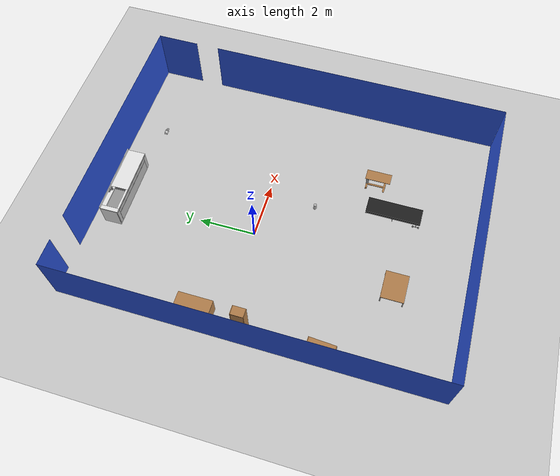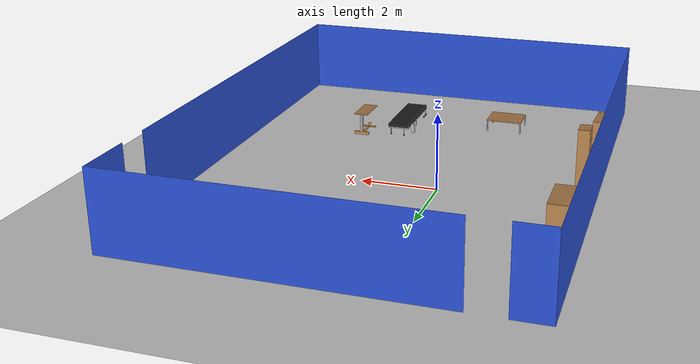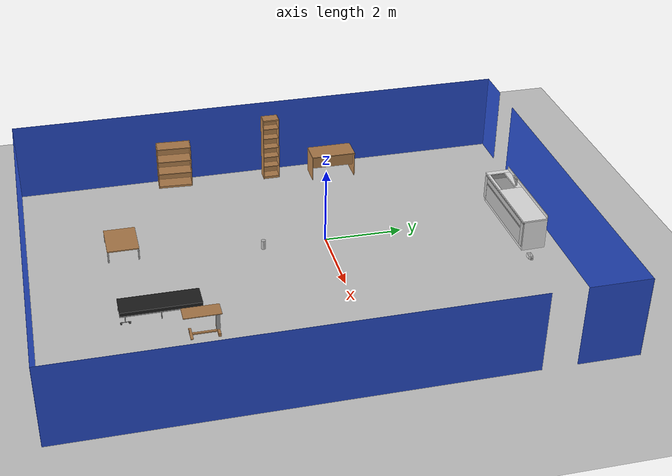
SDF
<sdf version="1.6">
 <world name="default">
  <physics name="default_physics" default="0" type="ode">
   <max_step_size>0.001</max_step_size>
   <real_time_factor>1</real_time_factor>
   <real_time_update_rate>1000</real_time_update_rate>
  </physics>
  <light name="sun" type="directional">
   <pose>0 0 10 0 -0 0</pose>
   <diffuse>0.8 0.8 0.8 1</diffuse>
   <specular>0.1 0.1 0.1 1</specular>
   <attenuation>
    <range>1000</range>
    <constant>0.9</constant>
    <linear>0.01</linear>
    <quadratic>0.001</quadratic>
   </attenuation>
   <direction>-0.5 0.5 -1</direction>
  </light>
  <model name="ground_plane">
   <static>1</static>
   <link name="link">
    <collision name="collision">
     <geometry><plane><normal>0 0 1</normal><size>100 100</size></plane></geometry>
     <surface><friction><ode><mu>100</mu><mu2>50</mu2></ode></friction></surface>
    </collision>
    <visual name="visual">
     <cast_shadows>0</cast_shadows>
     <geometry><plane><normal>0 0 1</normal><size>100 100</size></plane></geometry>
     <material>
      <script><uri>file://media/materials/scripts/gazebo.material</uri><name>Gazebo/Grey</name></script>
     </material>
    </visual>
   </link>
  </model>
  <gravity>0 0 -9.8</gravity>
  <magnetic_field>6e-06 2.3e-05 -4.2e-05</magnetic_field>
  <atmosphere type="adiabatic"/>
  <scene><ambient>0.4 0.4 0.4 1</ambient><background>0.7 0.7 0.7 1</background><shadows>1</shadows></scene>
  <spherical_coordinates>
   <surface_model>EARTH_WGS84</surface_model>
   <latitude_deg>0</latitude_deg>
   <longitude_deg>0</longitude_deg>
   <elevation>0</elevation>
   <heading_deg>0</heading_deg>
  </spherical_coordinates>
  <model name="bed">
   <link name="link">
    <inertial>
     <mass>10</mass>
     <inertia><ixx>1</ixx><ixy>0</ixy><ixz>0</ixz><iyy>1</iyy><iyz>0</iyz><izz>1</izz></inertia>
    </inertial>
    <visual name="cushion">
     <pose>-0.295 -0.975 0.2875 0 -0 0</pose>
     <geometry><box><size>0.59 1.95 0.095</size></box></geometry>
     <material>
      <script>
       <uri>model://base_materials/cloth/scripts</uri>
       <uri>model://base_materials/cloth/textures</uri>
       <name>cloth/black</name>
      </script>
     </material>
    </visual>
    <collision name="collision_cushion">
     <pose>-0.295 -0.975 0.2875 0 -0 0</pose>
     <geometry><box><size>0.59 1.95 0.095</size></box></geometry>
    </collision>
    <visual name="top_frame">
     <pose>-0.295 -0.975 0.225 0 -0 0</pose>
     <geometry><box><size>0.59 1.95 0.03</size></box></geometry>
     <material>
      <script><uri>model://base_materials/color/scripts</uri><name>hsr_color/grey</name></script>
     </material>
    </visual>
    <collision name="collision_top_frame">
     <pose>-0.295 -0.975 0.225 0 -0 0</pose>
     <geometry><box><size>0.59 1.95 0.03</size></box></geometry>
    </collision>
    <visual name="right_front_pole">
     <pose>-0.075 -0.0125 0.125 0 -0 0</pose>
     <geometry><cylinder><radius>0.0125</radius><length>0.17</length></cylinder></geometry>
     <material>
      <script><uri>model://base_materials/color/scripts</uri><name>hsr_color/grey</name></script>
     </material>
    </visual>
    <collision name="collision_right_front_pole">
     <pose>-0.075 -0.0125 0.125 0 -0 0</pose>
     <geometry><cylinder><radius>0.0125</radius><length>0.17</length></cylinder></geometry>
    </collision>
    <visual name="right_front_caster">
     <pose>-0.075 -0.0125 0.02 0 1.57 0</pose>
     <geometry><cylinder><radius>0.02</radius><length>0.04</length></cylinder></geometry>
     <material><script><name>Gazebo/Black</name><uri>__default__</uri></script></material>
    </visual>
    <collision name="collision_right_front_caster">
     <pose>-0.075 -0.0125 0.02 0 1.57 0</pose>
     <geometry><cylinder><radius>0.02</radius><length>0.04</length></cylinder></geometry>
    </collision>
    <visual name="right_back_pole">
     <pose>-0.46 -0.0125 0.125 0 -0 0</pose>
     <geometry><cylinder><radius>0.0125</radius><length>0.17</length></cylinder></geometry>
     <material>
      <script><uri>model://base_materials/color/scripts</uri><name>hsr_color/grey</name></script>
     </material>
    </visual>
    <collision name="collision_right_back_pole">
     <pose>-0.46 -0.0125 0.125 0 -0 0</pose>
     <geometry><cylinder><radius>0.0125</radius><length>0.17</length></cylinder></geometry>
    </collision>
    <visual name="right_back_caster">
     <pose>-0.46 -0.0125 0.02 0 1.57 0</pose>
     <geometry><cylinder><radius>0.02</radius><length>0.04</length></cylinder></geometry>
     <material><script><name>Gazebo/Black</name><uri>__default__</uri></script></material>
    </visual>
    <collision name="collision_back_front_caster">
     <pose>-0.46 -0.0125 0.02 0 1.57 0</pose>
     <geometry><cylinder><radius>0.02</radius><length>0.04</length></cylinder></geometry>
    </collision>
    <visual name="center_front_pole">
     <pose>-0.0425 -0.975 0.105 0 -0 0</pose>
     <geometry><cylinder><radius>0.0125</radius><length>0.21</length></cylinder></geometry>
     <material>
      <script><uri>model://base_materials/color/scripts</uri><name>hsr_color/grey</name></script>
     </material>
    </visual>
    <collision name="collision_center_front_pole">
     <pose>-0.0425 -0.975 0.105 0 -0 0</pose>
     <geometry><cylinder><radius>0.0125</radius><length>0.17</length></cylinder></geometry>
    </collision>
    <visual name="center_back_pole">
     <pose>-0.5475 -0.975 0.105 0 -0 0</pose>
     <geometry><cylinder><radius>0.0125</radius><length>0.21</length></cylinder></geometry>
     <material>
      <script><uri>model://base_materials/color/scripts</uri><name>hsr_color/grey</name></script>
     </material>
    </visual>
    <collision name="collision_center_back_pole">
     <pose>-0.5475 -0.975 0.105 0 -0 0</pose>
     <geometry><cylinder><radius>0.0125</radius><length>0.17</length></cylinder></geometry>
    </collision>
    <visual name="left_front_horizon_pole">
     <pose>-0.01 -1.825 0.06 1.57 -0 0</pose>
     <geometry><cylinder><radius>0.01</radius><length>0.25</length></cylinder></geometry>
     <material>
      <script><uri>model://base_materials/color/scripts</uri><name>hsr_color/grey</name></script>
     </material>
    </visual>
    <collision name="collision_left_front_horizon_pole">
     <pose>-0.01 -1.825 0.06 1.57 -0 0</pose>
     <geometry><cylinder><radius>0.01</radius><length>0.25</length></cylinder></geometry>
    </collision>
    <visual name="left_front_vertical_pole">
     <pose>-0.01 -1.825 0.14 0 -0 0</pose>
     <geometry><cylinder><radius>0.01</radius><length>0.14</length></cylinder></geometry>
     <material>
      <script><uri>model://base_materials/color/scripts</uri><name>hsr_color/grey</name></script>
     </material>
    </visual>
    <collision name="collision_left_front_vertical_pole">
     <pose>-0.01 -1.825 0.14 0 -0 0</pose>
     <geometry><cylinder><radius>0.01</radius><length>0.14</length></cylinder></geometry>
    </collision>
    <visual name="left_front_caster_r">
     <pose>-0.02 -1.725 0.025 0 1.57 0</pose>
     <geometry><cylinder><radius>0.025</radius><length>0.04</length></cylinder></geometry>
     <material><script><name>Gazebo/Black</name><uri>__default__</uri></script></material>
    </visual>
    <collision name="collision_left_front_caster_r">
     <pose>-0.02 -1.725 0.025 0 1.57 0</pose>
     <geometry><cylinder><radius>0.025</radius><length>0.04</length></cylinder></geometry>
    </collision>
    <visual name="left_front_caster_l">
     <pose>-0.02 -1.925 0.025 0 1.57 0</pose>
     <geometry><cylinder><radius>0.025</radius><length>0.04</length></cylinder></geometry>
     <material><script><name>Gazebo/Black</name><uri>__default__</uri></script></material>
    </visual>
    <collision name="collision_left_front_caster_l">
     <pose>-0.02 -1.925 0.025 0 1.57 0</pose>
     <geometry><cylinder><radius>0.025</radius><length>0.04</length></cylinder></geometry>
    </collision>
    <visual name="left_back_horizon_pole">
     <pose>-0.58 -1.825 0.06 1.57 -0 0</pose>
     <geometry><cylinder><radius>0.01</radius><length>0.25</length></cylinder></geometry>
     <material>
      <script><uri>model://base_materials/color/scripts</uri><name>hsr_color/grey</name></script>
     </material>
    </visual>
    <collision name="collision_left_back_horizon_pole">
     <pose>-0.58 -1.825 0.06 1.57 -0 0</pose>
     <geometry><cylinder><radius>0.01</radius><length>0.25</length></cylinder></geometry>
    </collision>
    <visual name="left_back_vertical_pole">
     <pose>-0.58 -1.825 0.14 0 -0 0</pose>
     <geometry><cylinder><radius>0.01</radius><length>0.14</length></cylinder></geometry>
     <material>
      <script><uri>model://base_materials/color/scripts</uri><name>hsr_color/grey</name></script>
     </material>
    </visual>
    <collision name="collision_left_back_vertical_pole">
     <pose>-0.58 -1.825 0.14 0 -0 0</pose>
     <geometry><cylinder><radius>0.01</radius><length>0.14</length></cylinder></geometry>
    </collision>
    <visual name="left_back_caster_r">
     <pose>-0.57 -1.725 0.025 0 1.57 0</pose>
     <geometry><cylinder><radius>0.025</radius><length>0.04</length></cylinder></geometry>
     <material><script><name>Gazebo/Black</name><uri>__default__</uri></script></material>
    </visual>
    <collision name="collision_left_back_caster_r">
     <pose>-0.57 -1.725 0.025 0 1.57 0</pose>
     <geometry><cylinder><radius>0.025</radius><length>0.04</length></cylinder></geometry>
    </collision>
    <visual name="left_back_caster_l">
     <pose>-0.57 -1.925 0.025 0 1.57 0</pose>
     <geometry><cylinder><radius>0.025</radius><length>0.04</length></cylinder></geometry>
     <material><script><name>Gazebo/Black</name><uri>__default__</uri></script></material>
    </visual>
    <collision name="collision_left_back_caster_l">
     <pose>-0.57 -1.925 0.025 0 1.57 0</pose>
     <geometry><cylinder><radius>0.025</radius><length>0.04</length></cylinder></geometry>
    </collision>
    <velocity_decay><linear>0</linear><angular>0</angular></velocity_decay>
   </link>
   <static>1</static>
   <pose>2.43571 -3.54937 0 0 -0 0</pose>
  </model>
  <model name="high_shelf">
   <link name="link">
    <inertial>
     <mass>5</mass>
     <inertia><ixx>1</ixx><ixy>0</ixy><ixz>0</ixz><iyy>1</iyy><iyz>0</iyz><izz>1</izz></inertia>
    </inertial>
    <visual name="left_board">
     <pose>-0.1475 0.009 0.898 0 -0 0</pose>
     <geometry><box><size>0.295 0.018 1.796</size></box></geometry>
     <material>
      <script>
       <uri>model://base_materials/wood/scripts</uri>
       <uri>model://base_materials/wood/textures</uri>
       <name>base_materials/light_wood</name>
      </script>
     </material>
    </visual>
    <collision name="collision_left_board">
     <pose>-0.1475 0.009 0.898 0 -0 0</pose>
     <geometry><box><size>0.295 0.018 1.796</size></box></geometry>
    </collision>
    <visual name="right_board">
     <pose>-0.1475 0.441 0.898 0 -0 0</pose>
     <geometry><box><size>0.295 0.018 1.796</size></box></geometry>
     <material>
      <script>
       <uri>model://base_materials/wood/scripts</uri>
       <uri>model://base_materials/wood/textures</uri>
       <name>base_materials/light_wood</name>
      </script>
     </material>
    </visual>
    <collision name="collision_right_board">
     <pose>-0.1475 0.441 0.898 0 -0 0</pose>
     <geometry><box><size>0.295 0.018 1.796</size></box></geometry>
    </collision>
    <visual name="top_board">
     <pose>-0.1475 0.225 1.7825 0 -0 0</pose>
     <geometry><box><size>0.295 0.414 0.035</size></box></geometry>
     <material>
      <script>
       <uri>model://base_materials/wood/scripts</uri>
       <uri>model://base_materials/wood/textures</uri>
       <name>base_materials/light_wood</name>
      </script>
     </material>
    </visual>
    <collision name="collision_top_board">
     <pose>-0.1475 0.225 1.7825 0 -0 0</pose>
     <geometry><box><size>0.295 0.414 0.035</size></box></geometry>
    </collision>
    <visual name="1st_shelf">
     <pose>-0.162 0.225 1.51 0 -0 0</pose>
     <geometry><box><size>0.266 0.414 0.018</size></box></geometry>
     <material>
      <script>
       <uri>model://base_materials/wood/scripts</uri>
       <uri>model://base_materials/wood/textures</uri>
       <name>base_materials/light_wood</name>
      </script>
     </material>
    </visual>
    <collision name="collision_1st_shelf">
     <pose>-0.162 0.225 1.51 0 -0 0</pose>
     <geometry><box><size>0.266 0.414 0.018</size></box></geometry>
    </collision>
    <visual name="2nd_shelf">
     <pose>-0.162 0.225 1.22 0 -0 0</pose>
     <geometry><box><size>0.266 0.414 0.018</size></box></geometry>
     <material>
      <script>
       <uri>model://base_materials/wood/scripts</uri>
       <uri>model://base_materials/wood/textures</uri>
       <name>base_materials/light_wood</name>
      </script>
     </material>
    </visual>
    <collision name="collision_2nd_shelf">
     <pose>-0.162 0.225 1.22 0 -0 0</pose>
     <geometry><box><size>0.266 0.414 0.018</size></box></geometry>
    </collision>
    <visual name="3rd_shelf">
     <pose>-0.162 0.225 0.93 0 -0 0</pose>
     <geometry><box><size>0.266 0.414 0.018</size></box></geometry>
     <material>
      <script>
       <uri>model://base_materials/wood/scripts</uri>
       <uri>model://base_materials/wood/textures</uri>
       <name>base_materials/light_wood</name>
      </script>
     </material>
    </visual>
    <collision name="collision_3rd_shelf">
     <pose>-0.162 0.225 0.93 0 -0 0</pose>
     <geometry><box><size>0.266 0.414 0.018</size></box></geometry>
    </collision>
    <visual name="4th_shelf">
     <pose>-0.162 0.225 0.65 0 -0 0</pose>
     <geometry><box><size>0.266 0.414 0.018</size></box></geometry>
     <material>
      <script>
       <uri>model://base_materials/wood/scripts</uri>
       <uri>model://base_materials/wood/textures</uri>
       <name>base_materials/light_wood</name>
      </script>
     </material>
    </visual>
    <collision name="collision_4th_shelf">
     <pose>-0.162 0.225 0.65 0 -0 0</pose>
     <geometry><box><size>0.266 0.414 0.018</size></box></geometry>
    </collision>
    <visual name="5th_shelf">
     <pose>-0.162 0.225 0.36 0 -0 0</pose>
     <geometry><box><size>0.266 0.414 0.018</size></box></geometry>
     <material>
      <script>
       <uri>model://base_materials/wood/scripts</uri>
       <uri>model://base_materials/wood/textures</uri>
       <name>base_materials/light_wood</name>
      </script>
     </material>
    </visual>
    <collision name="collision_5th_shelf">
     <pose>-0.162 0.225 0.36 0 -0 0</pose>
     <geometry><box><size>0.266 0.414 0.018</size></box></geometry>
    </collision>
    <visual name="bottom_board">
     <pose>-0.1475 0.225 0.035 0 -0 0</pose>
     <geometry><box><size>0.295 0.414 0.07</size></box></geometry>
     <material>
      <script>
       <uri>model://base_materials/wood/scripts</uri>
       <uri>model://base_materials/wood/textures</uri>
       <name>base_materials/light_wood</name>
      </script>
     </material>
    </visual>
    <collision name="collision_bottom_board">
     <pose>-0.1475 0.225 0.035 0 -0 0</pose>
     <geometry><box><size>0.295 0.414 0.07</size></box></geometry>
    </collision>
    <visual name="back_board">
     <pose>-0.286 0.225 0.898 0 -0 0</pose>
     <geometry><box><size>0.018 0.414 1.796</size></box></geometry>
     <material>
      <script>
       <uri>model://base_materials/wood/scripts</uri>
       <uri>model://base_materials/wood/textures</uri>
       <name>base_materials/light_wood</name>
      </script>
     </material>
    </visual>
    <collision name="collision_back_board">
     <pose>-0.286 0.225 0.898 0 -0 0</pose>
     <geometry><box><size>0.018 0.414 1.796</size></box></geometry>
    </collision>
    <velocity_decay><linear>0</linear><angular>0</angular></velocity_decay>
   </link>
   <static>1</static>
   <pose>-3.36844 -0.915845 0 0 -0 0</pose>
  </model>
  <model name="bookshelf">
   <static>1</static>
   <link name="link">
    <inertial><mass>1</mass></inertial>
    <collision name="back">
     <pose>0 0.005 0.6 0 -0 0</pose>
     <geometry><box><size>0.9 0.01 1.2</size></box></geometry>
    </collision>
    <visual name="visual1">
     <pose>0 0.005 0.6 0 -0 0</pose>
     <geometry><box><size>0.9 0.01 1.2</size></box></geometry>
     <material>
      <script><uri>file://media/materials/scripts/gazebo.material</uri><name>Gazebo/Wood</name></script>
     </material>
    </visual>
    <collision name="left_side">
     <pose>0.45 -0.195 0.6 0 -0 0</pose>
     <geometry><box><size>0.02 0.4 1.2</size></box></geometry>
    </collision>
    <visual name="visual2">
     <pose>0.45 -0.195 0.6 0 -0 0</pose>
     <geometry><box><size>0.02 0.4 1.2</size></box></geometry>
     <material>
      <script><uri>file://media/materials/scripts/gazebo.material</uri><name>Gazebo/Wood</name></script>
     </material>
    </visual>
    <collision name="right_side">
     <pose>-0.45 -0.195 0.6 0 -0 0</pose>
     <geometry><box><size>0.02 0.4 1.2</size></box></geometry>
    </collision>
    <visual name="visual3">
     <pose>-0.45 -0.195 0.6 0 -0 0</pose>
     <geometry><box><size>0.02 0.4 1.2</size></box></geometry>
     <material>
      <script><uri>file://media/materials/scripts/gazebo.material</uri><name>Gazebo/Wood</name></script>
     </material>
    </visual>
    <collision name="bottom">
     <pose>0 -0.195 0.03 0 -0 0</pose>
     <geometry><box><size>0.88 0.4 0.06</size></box></geometry>
    </collision>
    <visual name="visual4">
     <pose>0 -0.195 0.03 0 -0 0</pose>
     <geometry><box><size>0.88 0.4 0.06</size></box></geometry>
     <material>
      <script><uri>file://media/materials/scripts/gazebo.material</uri><name>Gazebo/Wood</name></script>
     </material>
    </visual>
    <collision name="top">
     <pose>0 -0.195 1.19 0 -0 0</pose>
     <geometry><box><size>0.88 0.4 0.02</size></box></geometry>
    </collision>
    <visual name="visual5">
     <pose>0 -0.195 1.19 0 -0 0</pose>
     <geometry><box><size>0.88 0.4 0.02</size></box></geometry>
     <material>
      <script><uri>file://media/materials/scripts/gazebo.material</uri><name>Gazebo/Wood</name></script>
     </material>
    </visual>
    <collision name="low_shelf">
     <pose>0 -0.195 0.43 0 -0 0</pose>
     <geometry><box><size>0.88 0.4 0.02</size></box></geometry>
    </collision>
    <visual name="visual6">
     <pose>0 -0.195 0.43 0 -0 0</pose>
     <geometry><box><size>0.88 0.4 0.02</size></box></geometry>
     <material>
      <script><uri>file://media/materials/scripts/gazebo.material</uri><name>Gazebo/Wood</name></script>
     </material>
    </visual>
    <collision name="high_shelf">
     <pose>0 -0.195 0.8 0 -0 0</pose>
     <geometry><box><size>0.88 0.4 0.02</size></box></geometry>
    </collision>
    <visual name="visual7">
     <pose>0 -0.195 0.8 0 -0 0</pose>
     <geometry><box><size>0.88 0.4 0.02</size></box></geometry>
     <material>
      <script><uri>file://media/materials/scripts/gazebo.material</uri><name>Gazebo/Wood</name></script>
     </material>
    </visual>
   </link>
   <pose>-3.87565 -3.32652 0 0 -0 1.51324</pose>
  </model>
  <model name="table">
   <static>1</static>
   <link name="link">
    <collision name="surface">
     <pose>0 0 0.8 0 -0 0</pose>
     <geometry><box><size>1 0.8 0.03</size></box></geometry>
    </collision>
    <visual name="visual1">
     <pose>0 0 0.8 0 -0 0</pose>
     <geometry><box><size>1 0.8 0.03</size></box></geometry>
     <material>
      <script><uri>file://media/materials/scripts/gazebo.material</uri><name>Gazebo/Wood</name></script>
     </material>
    </visual>
    <collision name="front_left_leg">
     <pose>0.48 0.38 0.4 0 -0 0</pose>
     <geometry><cylinder><radius>0.02</radius><length>0.8</length></cylinder></geometry>
    </collision>
    <visual name="front_left_leg">
     <pose>0.48 0.38 0.4 0 -0 0</pose>
     <geometry><cylinder><radius>0.02</radius><length>0.8</length></cylinder></geometry>
     <material>
      <script><uri>file://media/materials/scripts/gazebo.material</uri><name>Gazebo/Grey</name></script>
     </material>
    </visual>
    <collision name="front_right_leg">
     <pose>0.48 -0.38 0.4 0 -0 0</pose>
     <geometry><cylinder><radius>0.02</radius><length>0.8</length></cylinder></geometry>
    </collision>
    <visual name="front_right_leg">
     <pose>0.48 -0.38 0.4 0 -0 0</pose>
     <geometry><cylinder><radius>0.02</radius><length>0.8</length></cylinder></geometry>
     <material>
      <script><uri>file://media/materials/scripts/gazebo.material</uri><name>Gazebo/Grey</name></script>
     </material>
    </visual>
    <collision name="back_right_leg">
     <pose>-0.48 -0.38 0.4 0 -0 0</pose>
     <geometry><cylinder><radius>0.02</radius><length>0.8</length></cylinder></geometry>
    </collision>
    <visual name="back_right_leg">
     <pose>-0.48 -0.38 0.4 0 -0 0</pose>
     <geometry><cylinder><radius>0.02</radius><length>0.8</length></cylinder></geometry>
     <material>
      <script><uri>file://media/materials/scripts/gazebo.material</uri><name>Gazebo/Grey</name></script>
     </material>
    </visual>
    <collision name="back_left_leg">
     <pose>-0.48 0.38 0.4 0 -0 0</pose>
     <geometry><cylinder><radius>0.02</radius><length>0.8</length></cylinder></geometry>
    </collision>
    <visual name="back_left_leg">
     <pose>-0.48 0.38 0.4 0 -0 0</pose>
     <geometry><cylinder><radius>0.02</radius><length>0.8</length></cylinder></geometry>
     <material>
      <script><uri>file://media/materials/scripts/gazebo.material</uri><name>Gazebo/Grey</name></script>
     </material>
    </visual>
    <velocity_decay><linear>0</linear><angular>0</angular></velocity_decay>
   </link>
   <pose>-0.701888 -5.1258 -0.495043 0 -0 0</pose>
  </model>
  <model name="bed_table">
   <link name="link">
    <inertial>
     <pose>0 0.449 0.001 0 -0 0</pose>
     <mass>10</mass>
     <inertia><ixx>1</ixx><ixy>0</ixy><ixz>0</ixz><iyy>1</iyy><iyz>0</iyz><izz>1</izz></inertia>
    </inertial>
    <visual name="top_board">
     <pose>0 0.449 0.625 0 -0 0</pose>
     <geometry><box><size>0.398 0.898 0.02</size></box></geometry>
     <material>
      <script><uri>model://base_materials/wood/scripts/wood.material</uri><name>base_materials/wood</name></script>
     </material>
    </visual>
    <collision name="collision_top_board">
     <pose>0 0.449 0.625 0 -0 0</pose>
     <geometry><box><size>0.398 0.898 0.02</size></box></geometry>
    </collision>
    <visual name="right_pole">
     <pose>0 0.817 0.3515 0 -0 0</pose>
     <geometry><box><size>0.072 0.094 0.527</size></box></geometry>
     <material>
      <script><uri>model://base_materials/color/scripts</uri><name>hsr_color/grey</name></script>
     </material>
    </visual>
    <collision name="collision_right_pole">
     <pose>0 0.817 0.3515 0 -0 0</pose>
     <geometry><box><size>0.072 0.094 0.527</size></box></geometry>
    </collision>
    <visual name="right_bottom_pole">
     <pose>0 0.8225 0.044 0 -0 0</pose>
     <geometry><box><size>0.42 0.063 0.088</size></box></geometry>
     <material>
      <script><uri>model://base_materials/wood/scripts/wood.material</uri><name>base_materials/wood</name></script>
     </material>
    </visual>
    <collision name="collision_right_bottom_pole">
     <pose>0 0.8225 0.044 0 -0 0</pose>
     <geometry><box><size>0.42 0.063 0.088</size></box></geometry>
    </collision>
    <visual name="bottom_center_pole">
     <pose>0 0.502 0.03 0 -0 0</pose>
     <geometry><box><size>0.06 0.578 0.03</size></box></geometry>
     <material>
      <script><uri>model://base_materials/wood/scripts/wood.material</uri><name>base_materials/wood</name></script>
     </material>
    </visual>
    <collision name="collision_bottom_center_pole">
     <pose>0 0.502 0.03 0 -0 0</pose>
     <geometry><box><size>0.06 0.578 0.03</size></box></geometry>
    </collision>
    <visual name="left_bottom_pole">
     <pose>0 0.18 0.0325 0 -0 0</pose>
     <geometry><box><size>0.418 0.066 0.025</size></box></geometry>
     <material>
      <script><uri>model://base_materials/wood/scripts/wood.material</uri><name>base_materials/wood</name></script>
     </material>
    </visual>
    <collision name="collision_left_bottom_pole">
     <pose>0 0.18 0.0325 0 -0 0</pose>
     <geometry><box><size>0.418 0.066 0.025</size></box></geometry>
    </collision>
    <visual name="marker_0010">
     <pose>0 0.14 0.093 0 -0 0</pose>
     <geometry><box><size>0.09 0.001 0.09</size></box></geometry>
     <material>
      <script>
       <uri>model://bed_table/marker/0010/scripts</uri>
       <uri>model://bed_table/marker/0010/textures</uri>
       <name>Marker/0010</name>
      </script>
     </material>
    </visual>
    <collision name="collision_marker_0010">
     <pose>0 0.14 0.093 0 -0 0</pose>
     <geometry><box><size>0.09 0.001 0.09</size></box></geometry>
    </collision>
    <visual name="marker_0010_back_plate">
     <pose>0 0.146 0.093 0 -0 0</pose>
     <geometry><box><size>0.09 0.01 0.09</size></box></geometry>
     <material>
      <script><uri>model://base_materials/wood/scripts/wood.material</uri><name>base_materials/wood</name></script>
     </material>
    </visual>
    <collision name="collision_marker_0010_back_plate">
     <pose>0 0.146 0.093 0 -0 0</pose>
     <geometry><box><size>0.09 0.01 0.09</size></box></geometry>
    </collision>
    <velocity_decay><linear>0</linear><angular>0</angular></velocity_decay>
   </link>
   <static>1</static>
   <pose>3.17432 -4.14598 0 0 -0 0</pose>
  </model>
  <model name="office_desk">
   <link name="link">
    <inertial>
     <mass>10</mass>
     <inertia><ixx>1</ixx><ixy>0</ixy><ixz>0</ixz><iyy>1</iyy><iyz>0</iyz><izz>1</izz></inertia>
    </inertial>
    <visual name="top_board">
     <pose>-0.3 0.6 0.69 0 -0 0</pose>
     <geometry><box><size>0.6 1.2 0.02</size></box></geometry>
     <material>
      <script>
       <uri>model://base_materials/wood/scripts/wood.material</uri>
       <name>base_materials/dark_wood</name>
      </script>
     </material>
    </visual>
    <collision name="collision_top_board">
     <pose>-0.3 0.6 0.69 0 -0 0</pose>
     <geometry><box><size>0.6 1.2 0.02</size></box></geometry>
    </collision>
    <visual name="left_board">
     <pose>-0.3 0.01 0.34 0 -0 0</pose>
     <geometry><box><size>0.6 0.02 0.68</size></box></geometry>
     <material>
      <script>
       <uri>model://base_materials/wood/scripts/wood.material</uri>
       <name>base_materials/dark_wood</name>
      </script>
     </material>
    </visual>
    <collision name="collision_left_board">
     <pose>-0.3 0.01 0.34 0 -0 0</pose>
     <geometry><box><size>0.6 0.02 0.68</size></box></geometry>
    </collision>
    <visual name="right_board">
     <pose>-0.3 1.19 0.34 0 -0 0</pose>
     <geometry><box><size>0.6 0.02 0.68</size></box></geometry>
     <material>
      <script>
       <uri>model://base_materials/wood/scripts/wood.material</uri>
       <name>base_materials/dark_wood</name>
      </script>
     </material>
    </visual>
    <collision name="collision_right_board">
     <pose>-0.3 1.19 0.34 0 -0 0</pose>
     <geometry><box><size>0.6 0.02 0.68</size></box></geometry>
    </collision>
    <visual name="center_board">
     <pose>-0.14 0.6 0.49 0 -0 0</pose>
     <geometry><box><size>0.02 1.16 0.4</size></box></geometry>
     <material>
      <script>
       <uri>model://base_materials/wood/scripts/wood.material</uri>
       <name>base_materials/dark_wood</name>
      </script>
     </material>
    </visual>
    <collision name="ollision_center_board">
     <pose>-0.14 0.6 0.49 0 -0 0</pose>
     <geometry><box><size>0.02 1.16 0.4</size></box></geometry>
    </collision>
    <velocity_decay><linear>0</linear><angular>0</angular></velocity_decay>
   </link>
   <static>1</static>
   <pose>-3.01096 0.385316 0 0 -0 0</pose>
  </model>
  <model name="sink">
   <link name="link">
    <inertial>
     <mass>10</mass>
     <inertia><ixx>1</ixx><ixy>0</ixy><ixz>0</ixz><iyy>1</iyy><iyz>0</iyz><izz>1</izz></inertia>
    </inertial>
    <visual name="faucet1">
     <pose>-0.52 0.82 0.94 0 -0 0</pose>
     <geometry><cylinder><radius>0.027</radius><length>0.18</length></cylinder></geometry>
     <material>
      <script><uri>model://base_materials/color/scripts</uri><name>hsr_color/grey</name></script>
     </material>
    </visual>
    <collision name="collision_faucet1">
     <pose>-0.52 0.82 0.94 0 -0 0</pose>
     <geometry><cylinder><radius>0.027</radius><length>0.18</length></cylinder></geometry>
    </collision>
    <visual name="faucet2">
     <pose>-0.52 0.72 0.97 1.047 -0 0</pose>
     <geometry><cylinder><radius>0.024</radius><length>0.24</length></cylinder></geometry>
     <material>
      <script><uri>model://base_materials/color/scripts</uri><name>hsr_color/grey</name></script>
     </material>
    </visual>
    <collision name="collision_faucet2">
     <pose>-0.52 0.72 0.97 1.047 -0 0</pose>
     <geometry><cylinder><radius>0.024</radius><length>0.24</length></cylinder></geometry>
    </collision>
    <visual name="faucet3">
     <pose>-0.52 0.63 1 0 -0 0</pose>
     <geometry><cylinder><radius>0.015</radius><length>0.04</length></cylinder></geometry>
     <material>
      <script><uri>model://base_materials/color/scripts</uri><name>hsr_color/grey</name></script>
     </material>
    </visual>
    <collision name="collision_faucet3">
     <pose>-0.52 0.63 1 0 -0 0</pose>
     <geometry><cylinder><radius>0.015</radius><length>0.04</length></cylinder></geometry>
    </collision>
    <visual name="faucet_handle">
     <pose>-0.52 0.75 1.03 1.309 -0 0</pose>
     <geometry><box><size>0.048 0.01 0.11</size></box></geometry>
     <material>
      <script><uri>model://base_materials/color/scripts</uri><name>hsr_color/grey</name></script>
     </material>
    </visual>
    <collision name="collision_faucet_handle">
     <pose>-0.52 0.75 1.03 1.309 -0 0</pose>
     <geometry><box><size>0.048 0.01 0.11</size></box></geometry>
    </collision>
    <visual name="back_bucket">
     <pose>-0.57 0.545 0.74 0 -0 0</pose>
     <geometry><box><size>0.02 0.8 0.18</size></box></geometry>
     <material>
      <script><uri>model://base_materials/color/scripts</uri><name>hsr_color/grey</name></script>
     </material>
    </visual>
    <collision name="collision_back_bucket">
     <pose>-0.57 0.545 0.74 0 -0 0</pose>
     <geometry><box><size>0.02 0.8 0.18</size></box></geometry>
    </collision>
    <visual name="front_bucket">
     <pose>-0.06 0.545 0.74 0 -0 0</pose>
     <geometry><box><size>0.02 0.8 0.18</size></box></geometry>
     <material>
      <script><uri>model://base_materials/color/scripts</uri><name>hsr_color/grey</name></script>
     </material>
    </visual>
    <collision name="collision_fromt_bucket">
     <pose>-0.06 0.545 0.74 0 -0 0</pose>
     <geometry><box><size>0.02 0.8 0.18</size></box></geometry>
    </collision>
    <visual name="left_bucket">
     <pose>-0.32 0.14 0.74 0 -0 0</pose>
     <geometry><box><size>0.5 0.02 0.18</size></box></geometry>
     <material>
      <script><uri>model://base_materials/color/scripts</uri><name>hsr_color/grey</name></script>
     </material>
    </visual>
    <collision name="collision_left_bucket">
     <pose>-0.32 0.14 0.74 0 -0 0</pose>
     <geometry><box><size>0.5 0.02 0.18</size></box></geometry>
    </collision>
    <visual name="right_bucket">
     <pose>-0.32 0.96 0.74 0 -0 0</pose>
     <geometry><box><size>0.5 0.02 0.18</size></box></geometry>
     <material>
      <script><uri>model://base_materials/color/scripts</uri><name>hsr_color/grey</name></script>
     </material>
    </visual>
    <collision name="collision_right_bucket">
     <pose>-0.32 0.96 0.74 0 -0 0</pose>
     <geometry><box><size>0.5 0.02 0.18</size></box></geometry>
    </collision>
    <visual name="bottom_bucket">
     <pose>-0.33 0.555 0.695 0 -0 0</pose>
     <geometry><box><size>0.52 0.82 0.02</size></box></geometry>
     <material>
      <script><uri>model://base_materials/color/scripts</uri><name>hsr_color/grey</name></script>
     </material>
    </visual>
    <collision name="collision_bottom_bucket">
     <pose>-0.33 0.555 0.695 0 -0 0</pose>
     <geometry><box><size>0.52 0.82 0.02</size></box></geometry>
    </collision>
    <visual name="front_board">
     <pose>-0.04 1.275 0.425 0 -0 0</pose>
     <geometry><box><size>0.02 2.549 0.85</size></box></geometry>
     <material>
      <script><uri>model://base_materials/color/scripts</uri><name>hsr_color/white</name></script>
     </material>
    </visual>
    <collision name="collision_front_board">
     <pose>-0.04 1.275 0.425 0 -0 0</pose>
     <geometry><box><size>0.02 2.549 0.85</size></box></geometry>
    </collision>
    <visual name="back_board1">
     <pose>-0.625 1.275 0.425 0 -0 0</pose>
     <geometry><box><size>0.05 2.549 0.85</size></box></geometry>
     <material>
      <script><uri>model://base_materials/color/scripts</uri><name>hsr_color/white</name></script>
     </material>
    </visual>
    <collision name="collision_back_board1">
     <pose>-0.625 1.275 0.425 0 -0 0</pose>
     <geometry><box><size>0.05 2.549 0.85</size></box></geometry>
    </collision>
    <visual name="left_board">
     <pose>-0.34 0.025 0.425 0 -0 0</pose>
     <geometry><box><size>0.62 0.05 0.85</size></box></geometry>
     <material>
      <script><uri>model://base_materials/color/scripts</uri><name>hsr_color/white</name></script>
     </material>
    </visual>
    <collision name="collision_left_board">
     <pose>-0.34 0.025 0.425 0 -0 0</pose>
     <geometry><box><size>0.62 0.05 0.85</size></box></geometry>
    </collision>
    <visual name="right_board">
     <pose>-0.34 2.525 0.425 0 -0 0</pose>
     <geometry><box><size>0.62 0.05 0.85</size></box></geometry>
     <material>
      <script><uri>model://base_materials/color/scripts</uri><name>hsr_color/white</name></script>
     </material>
    </visual>
    <collision name="collision_right_board">
     <pose>-0.34 2.525 0.425 0 -0 0</pose>
     <geometry><box><size>0.62 0.05 0.85</size></box></geometry>
    </collision>
    <visual name="top_left_board">
     <pose>-0.325 0.0725 0.835 0 -0 0</pose>
     <geometry><box><size>0.65 0.146 0.04</size></box></geometry>
     <material>
      <script><uri>model://base_materials/color/scripts</uri><name>hsr_color/white</name></script>
     </material>
    </visual>
    <collision name="collision_top_left_board">
     <pose>-0.325 0.0725 0.835 0 -0 0</pose>
     <geometry><box><size>0.65 0.146 0.04</size></box></geometry>
    </collision>
    <visual name="top_right_board">
     <pose>-0.325 1.7475 0.835 0 -0 0</pose>
     <geometry><box><size>0.65 1.606 0.04</size></box></geometry>
     <material>
      <script><uri>model://base_materials/color/scripts</uri><name>hsr_color/white</name></script>
     </material>
    </visual>
    <collision name="collision_top_right_board">
     <pose>-0.325 1.7475 0.835 0 -0 0</pose>
     <geometry><box><size>0.65 1.606 0.04</size></box></geometry>
    </collision>
    <visual name="top_front_board">
     <pose>-0.035 0.545 0.835 0 -0 0</pose>
     <geometry><box><size>0.07 0.8 0.04</size></box></geometry>
     <material>
      <script><uri>model://base_materials/color/scripts</uri><name>hsr_color/white</name></script>
     </material>
    </visual>
    <collision name="collision_top_front_board">
     <pose>-0.035 0.545 0.835 0 -0 0</pose>
     <geometry><box><size>0.07 0.8 0.04</size></box></geometry>
    </collision>
    <visual name="top_back_board">
     <pose>-0.56 0.545 0.835 0 -0 0</pose>
     <geometry><box><size>0.18 0.8 0.04</size></box></geometry>
     <material>
      <script><uri>model://base_materials/color/scripts</uri><name>hsr_color/white</name></script>
     </material>
    </visual>
    <collision name="collision_top_back_board">
     <pose>-0.56 0.545 0.835 0 -0 0</pose>
     <geometry><box><size>0.18 0.8 0.04</size></box></geometry>
    </collision>
    <visual name="back_board2">
     <pose>-0.64 1.275 0.895 0 -0 0</pose>
     <geometry><box><size>0.02 2.55 0.08</size></box></geometry>
     <material>
      <script><uri>model://base_materials/color/scripts</uri><name>hsr_color/white</name></script>
     </material>
    </visual>
    <collision name="collision_back_board2">
     <pose>-0.64 1.275 0.895 0 -0 0</pose>
     <geometry><box><size>0.02 2.55 0.08</size></box></geometry>
    </collision>
    <visual name="handle1_1">
     <pose>-0.015 1.275 0.81 0 -0 0</pose>
     <geometry><box><size>0.03 2.55 0.005</size></box></geometry>
     <material>
      <script><uri>model://base_materials/color/scripts</uri><name>hsr_color/grey</name></script>
     </material>
    </visual>
    <collision name="collision_handle1_1">
     <pose>-0.015 1.275 0.81 0 -0 0</pose>
     <geometry><box><size>0.03 2.55 0.005</size></box></geometry>
    </collision>
    <visual name="handle1_2">
     <pose>-0.029 1.275 0.7925 0 -0 0</pose>
     <geometry><box><size>0.005 2.55 0.04</size></box></geometry>
     <material>
      <script><uri>model://base_materials/color/scripts</uri><name>hsr_color/grey</name></script>
     </material>
    </visual>
    <collision name="collision_handle1_2">
     <pose>-0.029 1.275 0.7925 0 -0 0</pose>
     <geometry><box><size>0.005 2.55 0.04</size></box></geometry>
    </collision>
    <visual name="handle1_3">
     <pose>-0.015 1.275 0.77 0 -0 0</pose>
     <geometry><box><size>0.03 2.55 0.005</size></box></geometry>
     <material>
      <script><uri>model://base_materials/color/scripts</uri><name>hsr_color/grey</name></script>
     </material>
    </visual>
    <collision name="collision_handle1_3">
     <pose>-0.015 1.275 0.77 0 -0 0</pose>
     <geometry><box><size>0.03 2.55 0.005</size></box></geometry>
    </collision>
    <visual name="front_left_drawer">
     <pose>-0.015 0.0725 0.44 0 -0 0</pose>
     <geometry><box><size>0.03 0.145 0.66</size></box></geometry>
     <material>
      <script><uri>model://sink/scripts</uri><uri>model://sink/textures</uri><name>sink/001</name></script>
     </material>
    </visual>
    <collision name="collision_left_drawer">
     <pose>-0.015 0.0725 0.44 0 -0 0</pose>
     <geometry><box><size>0.03 0.145 0.66</size></box></geometry>
    </collision>
    <visual name="front_right_drawer">
     <pose>-0.015 2.4725 0.44 0 -0 0</pose>
     <geometry><box><size>0.03 0.145 0.66</size></box></geometry>
     <material>
      <script><uri>model://sink/scripts</uri><uri>model://sink/textures</uri><name>sink/001</name></script>
     </material>
    </visual>
    <collision name="collision_right_drawer">
     <pose>-0.015 2.4725 0.44 0 -0 0</pose>
     <geometry><box><size>0.03 0.145 0.66</size></box></geometry>
    </collision>
    <visual name="front_top_drawer">
     <pose>-0.015 1.275 0.6975 0 -0 0</pose>
     <geometry><box><size>0.03 2.25 0.145</size></box></geometry>
     <material>
      <script><uri>model://sink/scripts</uri><uri>model://sink/textures</uri><name>sink/001</name></script>
     </material>
    </visual>
    <collision name="collision_top_drawer">
     <pose>-0.015 1.275 0.6975 0 -0 0</pose>
     <geometry><box><size>0.03 2.25 0.145</size></box></geometry>
    </collision>
    <visual name="handle2_1">
     <pose>-0.015 1.275 0.62 0 -0 0</pose>
     <geometry><box><size>0.03 2.25 0.005</size></box></geometry>
     <material>
      <script><uri>model://base_materials/color/scripts</uri><name>hsr_color/grey</name></script>
     </material>
    </visual>
    <collision name="collision_handle2_1">
     <pose>-0.015 1.275 0.62 0 -0 0</pose>
     <geometry><box><size>0.03 2.25 0.005</size></box></geometry>
    </collision>
    <visual name="handle2_2">
     <pose>-0.029 1.275 0.6025 0 -0 0</pose>
     <geometry><box><size>0.005 2.25 0.04</size></box></geometry>
     <material>
      <script><uri>model://base_materials/color/scripts</uri><name>hsr_color/grey</name></script>
     </material>
    </visual>
    <collision name="collision_handle2_2">
     <pose>-0.029 1.275 0.6025 0 -0 0</pose>
     <geometry><box><size>0.005 2.25 0.04</size></box></geometry>
    </collision>
    <visual name="handle2_3">
     <pose>-0.015 1.275 0.58 0 -0 0</pose>
     <geometry><box><size>0.03 2.25 0.005</size></box></geometry>
     <material>
      <script><uri>model://base_materials/color/scripts</uri><name>hsr_color/grey</name></script>
     </material>
    </visual>
    <collision name="collision_handle2_3">
     <pose>-0.015 1.275 0.58 0 -0 0</pose>
     <geometry><box><size>0.03 2.25 0.005</size></box></geometry>
    </collision>
    <visual name="front_bottom_drawer">
     <pose>-0.015 1.275 0.345 0 -0 0</pose>
     <geometry><box><size>0.03 2.25 0.47</size></box></geometry>
     <material>
      <script><uri>model://sink/scripts</uri><uri>model://sink/textures</uri><name>sink/001</name></script>
     </material>
    </visual>
    <collision name="collision_bottom_drawer">
     <pose>-0.015 1.275 0.345 0 -0 0</pose>
     <geometry><box><size>0.03 2.25 0.47</size></box></geometry>
    </collision>
    <velocity_decay><linear>0</linear><angular>0</angular></velocity_decay>
   </link>
   <static>1</static>
   <pose>-0.937399 4.61953 0 0 0 -1.55181</pose>
  </model>
  <model name="apartment_wall_collision">
   <link name="link">
    <inertial>
     <mass>50</mass>
     <inertia><ixx>1</ixx><ixy>0</ixy><ixz>0</ixz><iyy>1</iyy><iyz>0</iyz><izz>1</izz></inertia>
    </inertial>
    <visual name="wall_x00y00_x00y15">
     <pose>-0.002 6.59 1.04 0 -0 0</pose>
     <geometry><box><size>0.002 13.2 2.08</size></box></geometry>
     <material>
      <script>
       <uri>model://base_materials/color/scripts</uri>
       <name>hsr_color/cornflowerblue_transparency1</name>
      </script>
     </material>
    </visual>
    <collision name="wall_x00y00_x00y15">
     <pose>-0.002 6.59 1.04 0 -0 0</pose>
     <geometry><box><size>0.002 13.2 2.08</size></box></geometry>
    </collision>
    <visual name="wall_x00y00_x13y00">
     <pose>5.0375 -0.002 1.04 0 -0 0</pose>
     <geometry><box><size>10.08 0.002 2.08</size></box></geometry>
     <material>
      <script>
       <uri>model://base_materials/color/scripts</uri>
       <name>hsr_color/cornflowerblue_transparency1</name>
      </script>
     </material>
    </visual>
    <collision name="wall_x00y00_x13y00">
     <pose>5.0375 -0.002 1.04 0 -0 0</pose>
     <geometry><box><size>10.08 0.002 2.08</size></box></geometry>
    </collision>
    <visual name="wall_x13y00_x13y12">
     <pose>10.077 5.42 1.04 0 -0 0</pose>
     <geometry><box><size>0.002 10.84 2.08</size></box></geometry>
     <material>
      <script>
       <uri>model://base_materials/color/scripts</uri>
       <name>hsr_color/cornflowerblue_transparency1</name>
      </script>
     </material>
    </visual>
    <collision name="wall_x13y00_x13y12">
     <pose>10.077 5.42 1.04 0 -0 0</pose>
     <geometry><box><size>0.002 10.84 2.08</size></box></geometry>
    </collision>
    <visual name="wall_x13y14_x13y16">
     <pose>10.077 12.43 1.04 0 -0 0</pose>
     <geometry><box><size>0.002 1.5 2.08</size></box></geometry>
     <material>
      <script>
       <uri>model://base_materials/color/scripts</uri>
       <name>hsr_color/cornflowerblue_transparency1</name>
      </script>
     </material>
    </visual>
    <collision name="wall_x13y14_x13y16">
     <pose>10.077 12.43 1.04 0 -0 0</pose>
     <geometry><box><size>0.002 1.5 2.08</size></box></geometry>
    </collision>
    <visual name="wall_x00y16_x01y16">
     <pose>0.4525 13.182 1.04 0 -0 0</pose>
     <geometry><box><size>0.904 0.002 2.08</size></box></geometry>
     <material>
      <script>
       <uri>model://base_materials/color/scripts</uri>
       <name>hsr_color/cornflowerblue_transparency1</name>
      </script>
     </material>
    </visual>
    <collision name="wall_x00y16_x01y16">
     <pose>0.4525 13.182 1.04 0 -0 0</pose>
     <geometry><box><size>0.904 0.002 2.08</size></box></geometry>
    </collision>
    <visual name="wall_x03y16_x13y16">
     <pose>5.948 13.182 1.04 0 -0 0</pose>
     <geometry><box><size>8.3 0.002 2.08</size></box></geometry>
     <material>
      <script>
       <uri>model://base_materials/color/scripts</uri>
       <name>hsr_color/cornflowerblue_transparency1</name>
      </script>
     </material>
    </visual>
    <collision name="wall_x03y16_x13y16">
     <pose>5.948 13.182 1.04 0 -0 0</pose>
     <geometry><box><size>8.3 0.002 2.08</size></box></geometry>
    </collision>
    <velocity_decay><linear>0</linear><angular>0</angular></velocity_decay>
   </link>
   <static>1</static>
   <pose>-3.91102 -7.48104 0 0 -0 0</pose>
  </model>
  <model name="beer_0">
   <link name="link">
    <pose>0 0 0.115 0 -0 0</pose>
    <inertial>
     <mass>0.39</mass>
     <inertia><ixx>0.00058</ixx><ixy>0</ixy><ixz>0</ixz><iyy>0.00058</iyy><iyz>0</iyz><izz>0.00019</izz></inertia>
    </inertial>
    <collision name="collision">
     <geometry><cylinder><radius>0.055</radius><length>0.23</length></cylinder></geometry>
    </collision>
    <visual name="visual">
     <geometry><cylinder><radius>0.055</radius><length>0.23</length></cylinder></geometry>
     <material>
      <script>
       <uri>model://beer/materials/scripts</uri>
       <uri>model://beer/materials/textures</uri>
       <name>Beer/Diffuse</name>
      </script>
     </material>
    </visual>
   </link>
   <pose>1.18542 -1.85163 0.77499 1e-06 -2.6e-05 0.001041</pose>
  </model>
  <model name="medicine_box">
   <link name="link">
    <inertial>
     <pose>0.034 0 0.04 1.57 -0 0</pose>
     <mass>0.3</mass>
     <inertia><ixx>0.00058</ixx><ixy>0</ixy><ixz>0</ixz><iyy>0.00058</iyy><iyz>0</iyz><izz>0.00019</izz></inertia>
    </inertial>
    <visual name="handle_top">
     <pose>0.11 0 0.085 0 -0 0</pose>
     <geometry><box><size>0.068 0.068 0.002</size></box></geometry>
     <material>
      <script><uri>model://base_materials/color/scripts</uri><name>hsr_color/white</name></script>
     </material>
    </visual>
    <collision name="collision_handle_top">
     <pose>0.11 0 0.085 0 -0 0</pose>
     <geometry><box><size>0.068 0.068 0.002</size></box></geometry>
     <surface>
      <bounce><restitution_coefficient>0.2</restitution_coefficient><threshold>0</threshold></bounce>
      <contact><ode><max_vel>10</max_vel></ode></contact>
     </surface>
    </collision>
    <visual name="handle_bottom">
     <pose>0.11 0 0.016 0 -0 0</pose>
     <geometry><box><size>0.068 0.068 0.002</size></box></geometry>
     <material>
      <script><uri>model://base_materials/color/scripts</uri><name>hsr_color/white</name></script>
     </material>
    </visual>
    <collision name="collision_handle_bottom">
     <pose>0.11 0 0.016 0 -0 0</pose>
     <geometry><box><size>0.068 0.068 0.002</size></box></geometry>
     <surface>
      <bounce><restitution_coefficient>0.2</restitution_coefficient><threshold>0</threshold></bounce>
      <contact><ode><max_vel>10</max_vel></ode></contact>
     </surface>
    </collision>
    <visual name="marker_0509">
     <pose>0.11 0 0.0861 0 -0 3.1415</pose>
     <geometry><box><size>0.045 0.045 0.0001</size></box></geometry>
     <material>
      <script>
       <uri>model://medicine_box/marker/0509/scripts</uri>
       <uri>model://medicine_box/marker/0509/textures</uri>
       <name>Marker/0509</name>
      </script>
     </material>
    </visual>
    <visual name="handle_front">
     <pose>0.138 0 0.05 0 -0 0</pose>
     <geometry><box><size>0.014 0.068 0.068</size></box></geometry>
     <material>
      <script><uri>model://base_materials/color/scripts</uri><name>hsr_color/white</name></script>
     </material>
    </visual>
    <collision name="collision_handle_front">
     <pose>0.138 0 0.05 0 -0 0</pose>
     <geometry><box><size>0.014 0.068 0.068</size></box></geometry>
     <surface>
      <bounce><restitution_coefficient>0.2</restitution_coefficient><threshold>0</threshold></bounce>
      <contact><ode><max_vel>10</max_vel></ode></contact>
     </surface>
    </collision>
    <visual name="marker_0510">
     <pose>0.145 0 0.05 0 -0 0</pose>
     <geometry><box><size>0.0001 0.045 0.045</size></box></geometry>
     <material>
      <script>
       <uri>model://medicine_box/marker/0510/scripts</uri>
       <uri>model://medicine_box/marker/0510/textures</uri>
       <name>Marker/0510</name>
      </script>
     </material>
    </visual>
    <visual name="box_front">
     <pose>0.075 0 0.043 0 -0 0</pose>
     <geometry><box><size>0.001 0.108 0.085</size></box></geometry>
     <material>
      <script><uri>model://base_materials/color/scripts</uri><name>hsr_color/white_transparency1</name></script>
     </material>
    </visual>
    <collision name="collision_box_front">
     <pose>0.075 0 0.043 0 -0 0</pose>
     <geometry><box><size>0.001 0.108 0.085</size></box></geometry>
     <surface>
      <bounce><restitution_coefficient>0.2</restitution_coefficient><threshold>0</threshold></bounce>
      <contact><ode><max_vel>10</max_vel></ode></contact>
     </surface>
    </collision>
    <visual name="box_back">
     <pose>-0.076 0 0.043 0 -0 0</pose>
     <geometry><box><size>0.001 0.108 0.085</size></box></geometry>
     <material>
      <script><uri>model://base_materials/color/scripts</uri><name>hsr_color/white_transparency1</name></script>
     </material>
    </visual>
    <collision name="collision_box_back">
     <pose>-0.076 0 0.043 0 -0 0</pose>
     <geometry><box><size>0.001 0.108 0.085</size></box></geometry>
     <surface>
      <bounce><restitution_coefficient>0.2</restitution_coefficient><threshold>0</threshold></bounce>
      <contact><ode><max_vel>10</max_vel></ode></contact>
     </surface>
    </collision>
    <visual name="box_right">
     <pose>0 0.054 0.043 0 -0 0</pose>
     <geometry><box><size>0.15 0.001 0.085</size></box></geometry>
     <material>
      <script><uri>model://base_materials/color/scripts</uri><name>hsr_color/white_transparency1</name></script>
     </material>
    </visual>
    <collision name="collision_box_right">
     <pose>0 0.054 0.043 0 -0 0</pose>
     <geometry><box><size>0.15 0.001 0.085</size></box></geometry>
     <surface>
      <bounce><restitution_coefficient>0.2</restitution_coefficient><threshold>0</threshold></bounce>
      <contact><ode><max_vel>10</max_vel></ode></contact>
     </surface>
    </collision>
    <visual name="box_left">
     <pose>0 -0.054 0.043 0 -0 0</pose>
     <geometry><box><size>0.15 0.001 0.085</size></box></geometry>
     <material>
      <script><uri>model://base_materials/color/scripts</uri><name>hsr_color/white_transparency1</name></script>
     </material>
    </visual>
    <collision name="collision_box_left">
     <pose>0 -0.054 0.043 0 -0 0</pose>
     <geometry><box><size>0.15 0.001 0.085</size></box></geometry>
     <surface>
      <bounce><restitution_coefficient>0.2</restitution_coefficient><threshold>0</threshold></bounce>
      <contact><ode><max_vel>10</max_vel></ode></contact>
     </surface>
    </collision>
    <visual name="box_bottom">
     <pose>0 0 0.001 0 -0 0</pose>
     <geometry><box><size>0.151 0.108 0.002</size></box></geometry>
     <material>
      <script><uri>model://base_materials/color/scripts</uri><name>hsr_color/white_transparency1</name></script>
     </material>
    </visual>
    <collision name="collision_box_bottom">
     <pose>0 0 0.001 0 -0 0</pose>
     <geometry><box><size>0.151 0.108 0.002</size></box></geometry>
     <surface>
      <bounce><restitution_coefficient>0.2</restitution_coefficient><threshold>0</threshold></bounce>
      <contact><ode><max_vel>10</max_vel></ode></contact>
     </surface>
    </collision>
    <velocity_decay><linear>0</linear><angular>0</angular></velocity_decay>
   </link>
   <static>0</static>
   <pose>2.85225 4.33997 0.659995 2.6e-05 -7.5e-05 -0.004716</pose>
  </model>
 </world>
</sdf>
